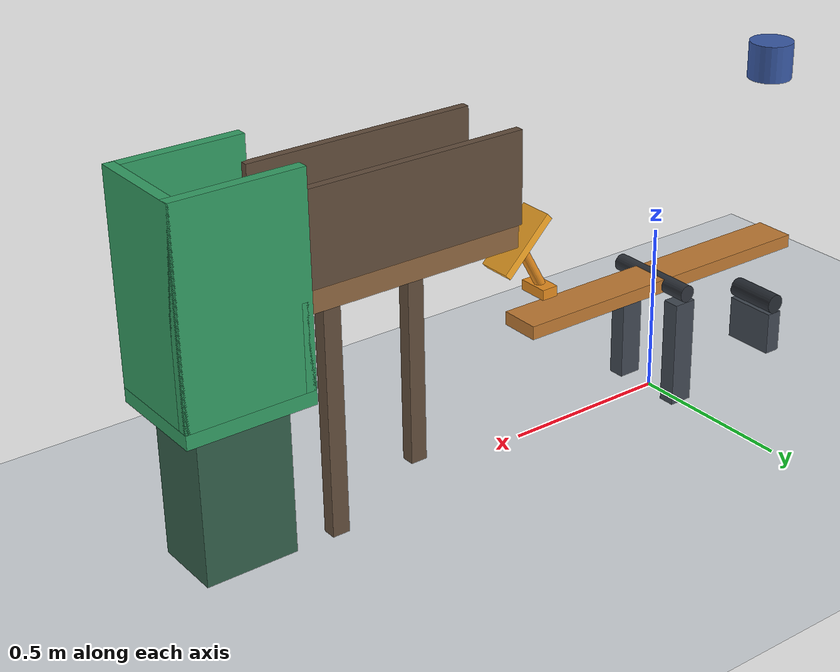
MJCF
<mujoco model="weight_lever_lift_bridge_cup">
  <compiler angle="degree" autolimits="true"/>
  <option timestep="0.002" gravity="0 0 -9.81" integrator="implicitfast" solver="Newton" iterations="100" tolerance="1e-10" cone="elliptic"/>
  <size njmax="1000" nconmax="300"/>

  <visual>
    <global azimuth="135" elevation="-20"/>
    <headlight ambient="0.35 0.35 0.35" diffuse="0.7 0.7 0.7"/>
  </visual>

  <worldbody>
    <light name="overhead_light" pos="0.4 -1 3" dir="0 0 -1"/>
    <geom name="floor" type="plane" pos="0 0 0" size="4 3 0.1" friction="0.8 0.01 0.005" rgba="0.82 0.84 0.86 1"/>

    <body name="fulcrum" pos="0 0 0">
      <geom name="fulcrum_near_leg" type="box" pos="0 -0.11 0.16" size="0.035 0.025 0.16" rgba="0.25 0.28 0.32 1"/>
      <geom name="fulcrum_far_leg" type="box" pos="0 0.11 0.16" size="0.035 0.025 0.16" rgba="0.25 0.28 0.32 1"/>
      <geom name="fulcrum_axle" type="cylinder" pos="0 0 0.35" quat="0.70710678 0.70710678 0 0" size="0.025 0.14" contype="0" conaffinity="0" rgba="0.18 0.20 0.23 1"/>
    </body>

    <body name="lower_stop" pos="-0.44 0 0.162">
      <geom name="lower_stop_support" type="box" pos="0 0 -0.096" size="0.025 0.08 0.066" rgba="0.25 0.28 0.32 1"/>
      <geom name="lever_lower_stop" type="cylinder" quat="0.70710678 0.70710678 0 0" size="0.03 0.08" friction="0.8 0.005 0.001" solref="0.006 1" solimp="0.95 0.99 0.001" rgba="0.15 0.17 0.20 1"/>
    </body>

    <!-- Weight bottom: 0.870 m. Horizontal lever top: 0.370 m. -->
    <body name="weight" pos="-0.43 0 0.925">
      <freejoint name="weight_free"/>
      <geom name="weight_cylinder" type="cylinder" size="0.065 0.055" mass="0.4" friction="1.0 0.005 0.001" solref="0.006 1" solimp="0.95 0.99 0.001" rgba="0.22 0.35 0.65 1"/>
    </body>

    <body name="lever" pos="0 0 0.35">
      <joint name="lever_hinge" type="hinge" axis="0 1 0" range="-17.188734 0" damping="0.003" frictionloss="0.001" solreflimit="0.004 1" solimplimit="0.99 0.999 0.001"/>
      <geom name="lever_beam" type="box" size="0.5 0.06 0.02" mass="0.12" friction="1.0 0.005 0.001" solref="0.006 1" solimp="0.95 0.99 0.001" rgba="0.75 0.48 0.20 1"/>
    </body>

    <!-- The lever must rise through a 0.060 m initial gap to reach this pad. -->
    <body name="lift" pos="0.43 0 0.43">
      <joint name="lift_slide" type="slide" axis="0 0 1" range="0 0.45" damping="0.02" solreflimit="0.004 1" solimplimit="0.99 0.999 0.001"/>
      <geom name="lift_contact_pad" type="box" pos="0 0 0.015" size="0.025 0.045 0.015" mass="0.03" friction="0.8 0.005 0.001" solref="0.006 1" solimp="0.95 0.99 0.001" rgba="0.9 0.55 0.12 1"/>
      <geom name="lift_stem" type="capsule" fromto="0 0 0.03 0.08 0 0.1765" size="0.015" mass="0.03" friction="0.2 0.001 0.0001" solref="0.006 1" rgba="0.9 0.55 0.12 1"/>
      <geom name="lift_striking_face" type="box" pos="0.08 0 0.1765" euler="0 45 0" size="0.10 0.05 0.012" mass="0.18" priority="3" friction="0.02 0.0001 0.0001" condim="3" solref="0.006 1" solimp="0.95 0.99 0.001" rgba="1.0 0.68 0.16 1"/>
    </body>

    <!-- Ball contact requires about 0.170 m of lift travel; the lever drives only about 0.082 m. -->
    <body name="ball" pos="0.60 0 0.76">
      <freejoint name="ball_free"/>
      <geom name="ball_sphere" type="sphere" size="0.04" mass="0.03" condim="6" friction="0.4 0.002 0.0003" solref="0.006 1" solimp="0.95 0.99 0.001" rgba="0.85 0.12 0.10 1"/>
    </body>

    <body name="bridge" pos="0 0 0">
      <geom name="bridge_deck" type="box" pos="0.93 0 0.685" size="0.335 0.11 0.035" priority="1" condim="6" friction="0.45 0.003 0.0005" solref="0.006 1" solimp="0.95 0.99 0.001" rgba="0.56 0.40 0.25 1"/>
      <geom name="bridge_near_rail" type="box" pos="0.93 -0.112 0.85" size="0.335 0.012 0.13" priority="1" condim="6" friction="0.45 0.003 0.0005" solref="0.006 1" rgba="0.38 0.30 0.23 1"/>
      <geom name="bridge_far_rail" type="box" pos="0.93 0.112 0.85" size="0.335 0.012 0.13" priority="1" condim="6" friction="0.45 0.003 0.0005" solref="0.006 1" rgba="0.38 0.30 0.23 1"/>
      <geom name="bridge_near_leg" type="box" pos="0.80 -0.085 0.325" size="0.025 0.02 0.325" rgba="0.38 0.30 0.23 1"/>
      <geom name="bridge_far_leg" type="box" pos="1.17 0.085 0.325" size="0.025 0.02 0.325" rgba="0.38 0.30 0.23 1"/>
    </body>

    <body name="cup" pos="1.43 0 0">
      <geom name="cup_pedestal" type="box" pos="0 0 0.215" size="0.13 0.10 0.215" rgba="0.20 0.37 0.29 1"/>
      <geom name="cup_bottom" type="box" pos="0 0 0.45" size="0.18 0.15 0.02" priority="2" condim="6" friction="0.9 0.02 0.01" solref="0.01 1" solimp="0.95 0.99 0.001" rgba="0.20 0.62 0.39 1"/>
      <geom name="cup_back_wall" type="box" pos="0.165 0 0.76" size="0.015 0.15 0.29" priority="2" condim="6" friction="0.9 0.02 0.01" solref="0.01 1" solimp="0.95 0.99 0.001" rgba="0.20 0.62 0.39 1"/>
      <geom name="cup_near_wall" type="box" pos="0 -0.135 0.76" size="0.18 0.015 0.29" priority="2" condim="6" friction="0.9 0.02 0.01" solref="0.01 1" solimp="0.95 0.99 0.001" rgba="0.20 0.62 0.39 1"/>
      <geom name="cup_far_wall" type="box" pos="0 0.135 0.76" size="0.18 0.015 0.29" priority="2" condim="6" friction="0.9 0.02 0.01" solref="0.01 1" solimp="0.95 0.99 0.001" rgba="0.20 0.62 0.39 1"/>
      <geom name="cup_entry_wall" type="box" pos="-0.165 0 0.59" size="0.015 0.15 0.12" priority="2" condim="6" friction="0.9 0.02 0.01" solref="0.01 1" solimp="0.95 0.99 0.001" rgba="0.20 0.62 0.39 1"/>
    </body>
  </worldbody>

  <keyframe>
    <key name="start" qpos="-0.43 0 0.925 1 0 0 0 0 0 0.60 0 0.76 1 0 0 0"/>
  </keyframe>
</mujoco>
